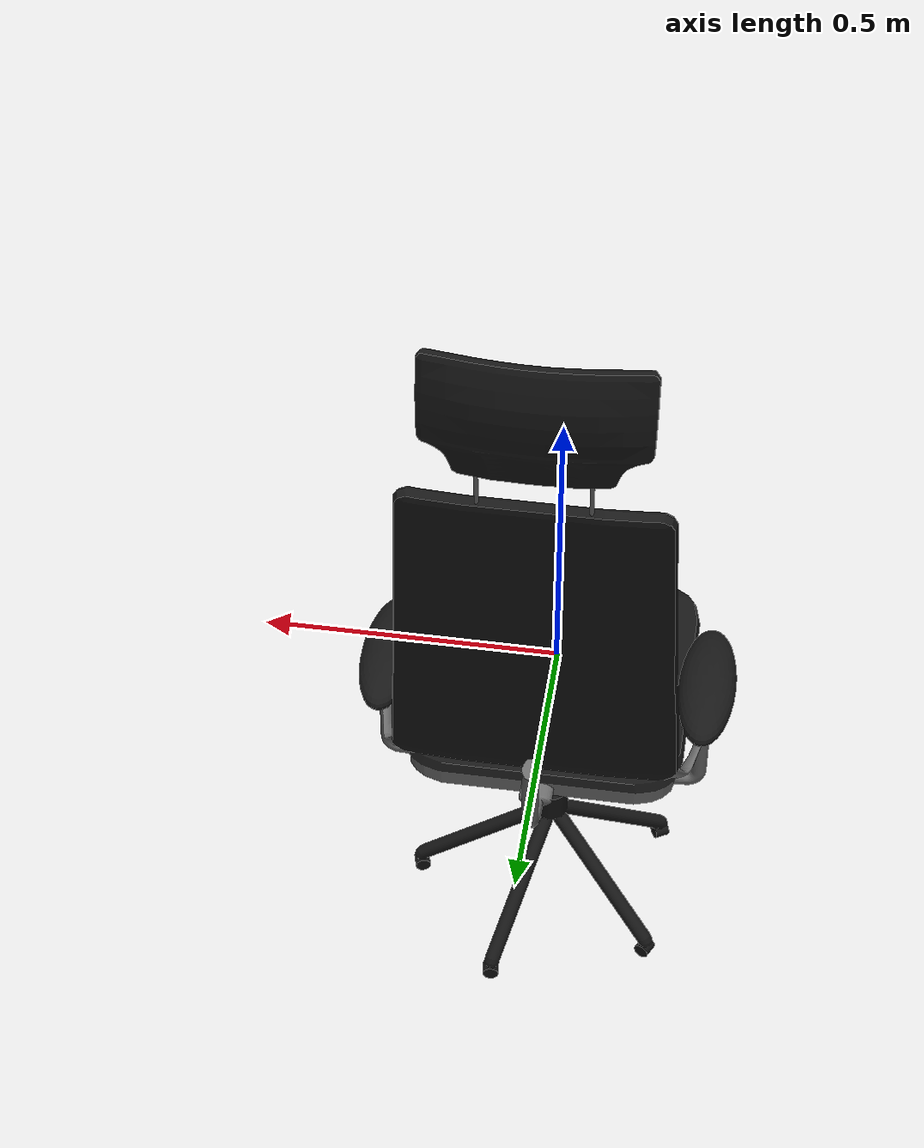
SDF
<?xml version='1.0'?>
<sdf version='1.5'>
    <model name="402_office_chair">
        <pose>0 0 0 0 0 0</pose>
        <static>false</static>
        <link name='model_body'>
            <visual name="visual">
                <geometry>
                    <mesh>
                        <uri>model://rs_gazebo/meshes/ss_hq4/402_office_chair/402_office_chair_visual.dae</uri>
                        <scale>1 1 1</scale>
                    </mesh>
                </geometry>
            </visual>

            <collision name="collision">
                <geometry>
                    <mesh>
                        <uri>model://rs_gazebo/meshes/ss_hq4/402_office_chair/402_office_chair_collision.stl</uri>
                        <scale>1 1 1</scale>
                    </mesh>
                </geometry>
            </collision>

            <inertial>
                <pose> 0 0 0 0 0 0</pose>
                <inertia>
                    <ixx>0.966666666667</ixx>
                    <ixy>0</ixy>
                    <ixz>0</ixz>
                    <iyy>0.966666666667</iyy>
                    <iyz>0</iyz>
                    <izz>0.266666666667</izz>
                </inertia>
                <mass>10.0</mass>
            </inertial>
        </link>
    </model>
</sdf>
